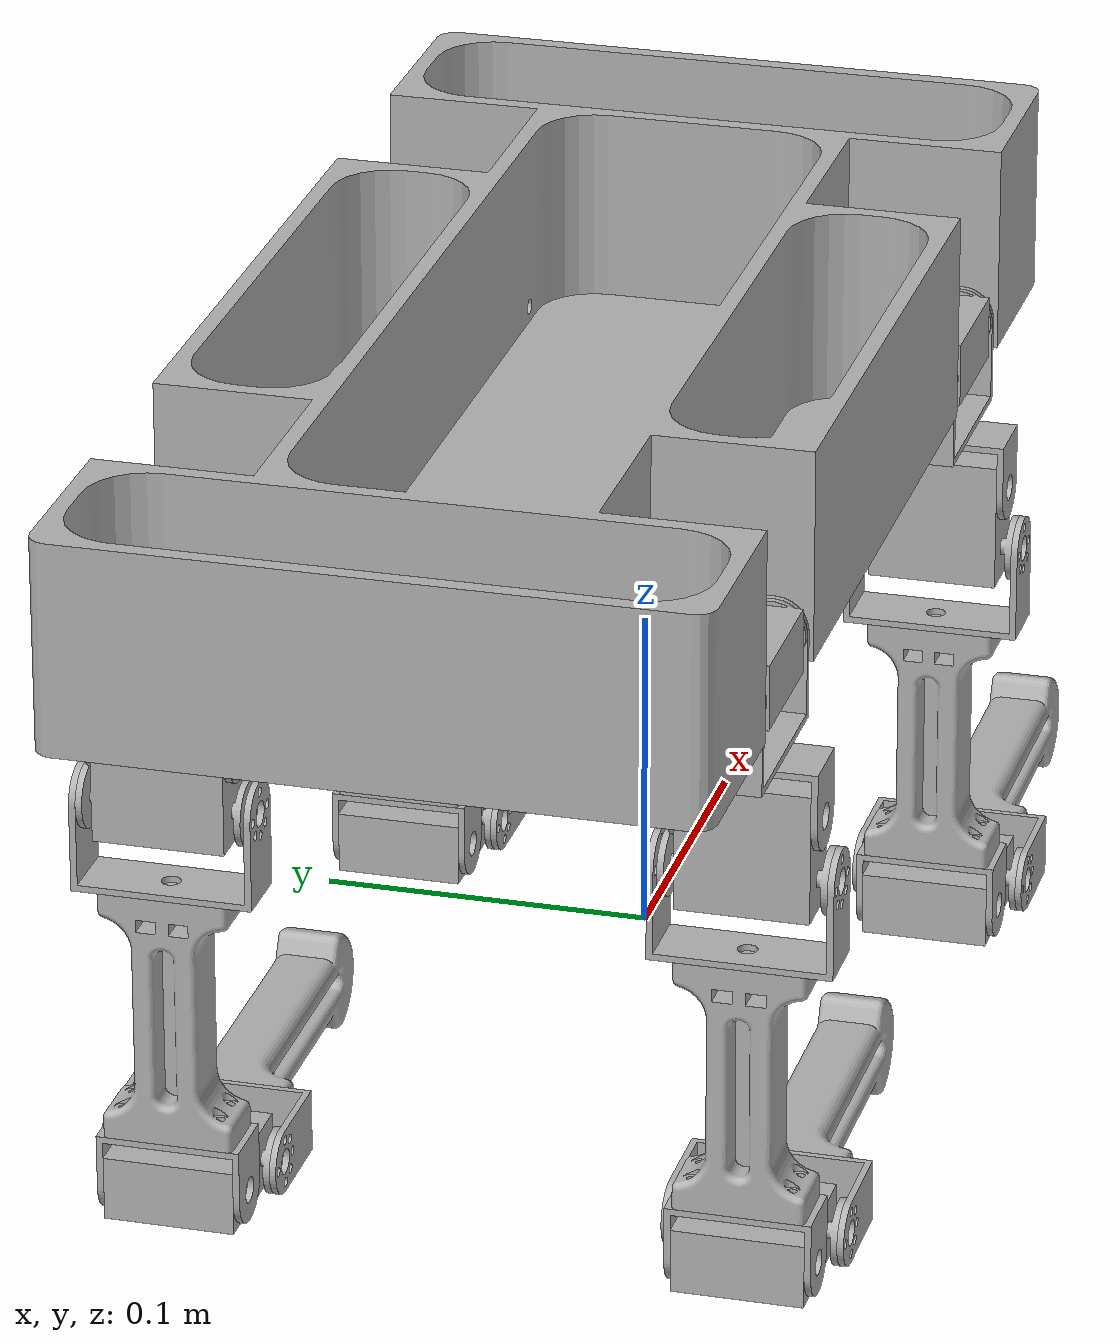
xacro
<?xml version="1.0" ?>
<robot name="bot_urdf_hii" xmlns:xacro="http://www.ros.org/wiki/xacro">

<xacro:include filename="$(find jack_pack)/urdf/materials.xacro" />
<xacro:include filename="$(find jack_pack)/urdf/bot_urdf_hii.trans" />
<xacro:include filename="$(find bot_urdf_hii_description)/urdf/bot_urdf_hii.gazebo" />
<xacro:include filename="$(find jack_pack)/urdf/ros2_control.xacro" />
<link name="base_link">
  <inertial>
    <origin xyz="-7.829829556326353e-11 0.024365666684909387 0.1598790754817299" rpy="0 0 0"/>
    <mass value="1.1433732359085518"/>
    <inertia ixx="0.005235" iyy="0.020337" izz="0.024577" ixy="-0.0" iyz="-0.0" ixz="-0.0"/>
  </inertial>
  <visual>
    <origin xyz="0 0 0" rpy="0 0 0"/>
    <geometry>
      <mesh filename="file://$(find bot_urdf_hii_description)/meshes/base_link.stl" scale="0.001 0.001 0.001"/>
    </geometry>
    <material name="silver"/>
  </visual>
  <collision>
    <origin xyz="0 0 0" rpy="0 0 0"/>
    <geometry>
      <mesh filename="file://$(find bot_urdf_hii_description)/meshes/base_link.stl" scale="0.001 0.001 0.001"/>
    </geometry>
  </collision>
</link>

<link name="servo_small_clip_v1__6__1">
  <inertial>
    <origin xyz="2.7945336743273597e-07 0.006816401170189237 3.333151153139813e-07" rpy="0 0 0"/>
    <mass value="0.009145592822398149"/>
    <inertia ixx="1e-06" iyy="3e-06" izz="3e-06" ixy="0.0" iyz="-0.0" ixz="0.0"/>
  </inertial>
  <visual>
    <origin xyz="-0.121498 -0.074366 -0.145634" rpy="0 0 0"/>
    <geometry>
      <mesh filename="file://$(find bot_urdf_hii_description)/meshes/servo_small_clip_v1__6__1.stl" scale="0.001 0.001 0.001"/>
    </geometry>
    <material name="silver"/>
  </visual>
  <collision>
    <origin xyz="-0.121498 -0.074366 -0.145634" rpy="0 0 0"/>
    <geometry>
      <mesh filename="file://$(find bot_urdf_hii_description)/meshes/servo_small_clip_v1__6__1.stl" scale="0.001 0.001 0.001"/>
    </geometry>
  </collision>
</link>

<link name="servo_small_clip_v1__5__1">
  <inertial>
    <origin xyz="2.7945336743273597e-07 -0.00681706780037027 3.3331511534173686e-07" rpy="0 0 0"/>
    <mass value="0.009145592822398149"/>
    <inertia ixx="1e-06" iyy="3e-06" izz="3e-06" ixy="-0.0" iyz="0.0" ixz="0.0"/>
  </inertial>
  <visual>
    <origin xyz="-0.121498 0.025634 -0.145634" rpy="0 0 0"/>
    <geometry>
      <mesh filename="file://$(find bot_urdf_hii_description)/meshes/servo_small_clip_v1__5__1.stl" scale="0.001 0.001 0.001"/>
    </geometry>
    <material name="silver"/>
  </visual>
  <collision>
    <origin xyz="-0.121498 0.025634 -0.145634" rpy="0 0 0"/>
    <geometry>
      <mesh filename="file://$(find bot_urdf_hii_description)/meshes/servo_small_clip_v1__5__1.stl" scale="0.001 0.001 0.001"/>
    </geometry>
  </collision>
</link>

<link name="servo_small_clip_v1__7__1">
  <inertial>
    <origin xyz="0.0 0.006816401170189237 3.333151153139813e-07" rpy="0 0 0"/>
    <mass value="0.009145592822398149"/>
    <inertia ixx="1e-06" iyy="3e-06" izz="3e-06" ixy="0.0" iyz="-0.0" ixz="0.0"/>
  </inertial>
  <visual>
    <origin xyz="0.1215 -0.074366 -0.145634" rpy="0 0 0"/>
    <geometry>
      <mesh filename="file://$(find bot_urdf_hii_description)/meshes/servo_small_clip_v1__7__1.stl" scale="0.001 0.001 0.001"/>
    </geometry>
    <material name="silver"/>
  </visual>
  <collision>
    <origin xyz="0.1215 -0.074366 -0.145634" rpy="0 0 0"/>
    <geometry>
      <mesh filename="file://$(find bot_urdf_hii_description)/meshes/servo_small_clip_v1__7__1.stl" scale="0.001 0.001 0.001"/>
    </geometry>
  </collision>
</link>

<link name="servo_small_clip_v1__4__1">
  <inertial>
    <origin xyz="-4.163336342344337e-17 -0.006817067800370249 3.333151155360259e-07" rpy="0 0 0"/>
    <mass value="0.009145592822398149"/>
    <inertia ixx="1e-06" iyy="3e-06" izz="3e-06" ixy="0.0" iyz="0.0" ixz="0.0"/>
  </inertial>
  <visual>
    <origin xyz="0.1215 0.025634 -0.145634" rpy="0 0 0"/>
    <geometry>
      <mesh filename="file://$(find bot_urdf_hii_description)/meshes/servo_small_clip_v1__4__1.stl" scale="0.001 0.001 0.001"/>
    </geometry>
    <material name="silver"/>
  </visual>
  <collision>
    <origin xyz="0.1215 0.025634 -0.145634" rpy="0 0 0"/>
    <geometry>
      <mesh filename="file://$(find bot_urdf_hii_description)/meshes/servo_small_clip_v1__4__1.stl" scale="0.001 0.001 0.001"/>
    </geometry>
  </collision>
</link>

<link name="Servo_RDS3115_v1__5__1">
  <inertial>
    <origin xyz="0.019999999999999907 -0.011079623170873722 3.333150907225413e-07" rpy="0 0 0"/>
    <mass value="0.050997583494915726"/>
    <inertia ixx="9e-06" iyy="1e-05" izz="1.5e-05" ixy="-0.0" iyz="-0.0" ixz="0.0"/>
  </inertial>
  <visual>
    <origin xyz="0.1415 0.042634 -0.145634" rpy="0 0 0"/>
    <geometry>
      <mesh filename="file://$(find bot_urdf_hii_description)/meshes/Servo_RDS3115_v1__5__1.stl" scale="0.001 0.001 0.001"/>
    </geometry>
    <material name="silver"/>
  </visual>
  <collision>
    <origin xyz="0.1415 0.042634 -0.145634" rpy="0 0 0"/>
    <geometry>
      <mesh filename="file://$(find bot_urdf_hii_description)/meshes/Servo_RDS3115_v1__5__1.stl" scale="0.001 0.001 0.001"/>
    </geometry>
  </collision>
</link>

<link name="Servo_RDS3115_v1__4__1">
  <inertial>
    <origin xyz="-0.01999972054663264 -0.011079623170873895 3.3331509052825226e-07" rpy="0 0 0"/>
    <mass value="0.050997583494915726"/>
    <inertia ixx="9e-06" iyy="1e-05" izz="1.5e-05" ixy="-0.0" iyz="-0.0" ixz="-0.0"/>
  </inertial>
  <visual>
    <origin xyz="-0.141498 0.042634 -0.145634" rpy="0 0 0"/>
    <geometry>
      <mesh filename="file://$(find bot_urdf_hii_description)/meshes/Servo_RDS3115_v1__4__1.stl" scale="0.001 0.001 0.001"/>
    </geometry>
    <material name="silver"/>
  </visual>
  <collision>
    <origin xyz="-0.141498 0.042634 -0.145634" rpy="0 0 0"/>
    <geometry>
      <mesh filename="file://$(find bot_urdf_hii_description)/meshes/Servo_RDS3115_v1__4__1.stl" scale="0.001 0.001 0.001"/>
    </geometry>
  </collision>
</link>

<link name="Servo_RDS3115_v1__3__1">
  <inertial>
    <origin xyz="0.020000000000000018 0.011078956540692839 3.333150904727411e-07" rpy="0 0 0"/>
    <mass value="0.050997583494915726"/>
    <inertia ixx="9e-06" iyy="1e-05" izz="1.5e-05" ixy="0.0" iyz="-0.0" ixz="0.0"/>
  </inertial>
  <visual>
    <origin xyz="0.1415 -0.091366 -0.145634" rpy="0 0 0"/>
    <geometry>
      <mesh filename="file://$(find bot_urdf_hii_description)/meshes/Servo_RDS3115_v1__3__1.stl" scale="0.001 0.001 0.001"/>
    </geometry>
    <material name="silver"/>
  </visual>
  <collision>
    <origin xyz="0.1415 -0.091366 -0.145634" rpy="0 0 0"/>
    <geometry>
      <mesh filename="file://$(find bot_urdf_hii_description)/meshes/Servo_RDS3115_v1__3__1.stl" scale="0.001 0.001 0.001"/>
    </geometry>
  </collision>
</link>

<link name="Servo_RDS3115_v1__2__1">
  <inertial>
    <origin xyz="-0.01999972054663257 0.011078956540692839 3.333150904727411e-07" rpy="0 0 0"/>
    <mass value="0.050997583494915726"/>
    <inertia ixx="9e-06" iyy="1e-05" izz="1.5e-05" ixy="0.0" iyz="0.0" ixz="0.0"/>
  </inertial>
  <visual>
    <origin xyz="-0.141498 -0.091366 -0.145634" rpy="0 0 0"/>
    <geometry>
      <mesh filename="file://$(find bot_urdf_hii_description)/meshes/Servo_RDS3115_v1__2__1.stl" scale="0.001 0.001 0.001"/>
    </geometry>
    <material name="silver"/>
  </visual>
  <collision>
    <origin xyz="-0.141498 -0.091366 -0.145634" rpy="0 0 0"/>
    <geometry>
      <mesh filename="file://$(find bot_urdf_hii_description)/meshes/Servo_RDS3115_v1__2__1.stl" scale="0.001 0.001 0.001"/>
    </geometry>
  </collision>
</link>

<link name="servo_big_clip_v1__4__1">
  <inertial>
    <origin xyz="-0.0254997205466327 -5.123391884492845e-07 -0.01767339316689384" rpy="0 0 0"/>
    <mass value="0.011882867210540276"/>
    <inertia ixx="2e-06" iyy="7e-06" izz="6e-06" ixy="0.0" iyz="0.0" ixz="0.0"/>
  </inertial>
  <visual>
    <origin xyz="-0.146498 -0.111366 -0.145634" rpy="0 0 0"/>
    <geometry>
      <mesh filename="file://$(find bot_urdf_hii_description)/meshes/servo_big_clip_v1__4__1.stl" scale="0.001 0.001 0.001"/>
    </geometry>
    <material name="silver"/>
  </visual>
  <collision>
    <origin xyz="-0.146498 -0.111366 -0.145634" rpy="0 0 0"/>
    <geometry>
      <mesh filename="file://$(find bot_urdf_hii_description)/meshes/servo_big_clip_v1__4__1.stl" scale="0.001 0.001 0.001"/>
    </geometry>
  </collision>
</link>

<link name="servo_big_clip_v1__6__1">
  <inertial>
    <origin xyz="-0.025499999999999967 -5.123391891292961e-07 -0.017673393166893897" rpy="0 0 0"/>
    <mass value="0.011882867210540276"/>
    <inertia ixx="2e-06" iyy="7e-06" izz="6e-06" ixy="-0.0" iyz="0.0" ixz="-0.0"/>
  </inertial>
  <visual>
    <origin xyz="0.0965 -0.111366 -0.145634" rpy="0 0 0"/>
    <geometry>
      <mesh filename="file://$(find bot_urdf_hii_description)/meshes/servo_big_clip_v1__6__1.stl" scale="0.001 0.001 0.001"/>
    </geometry>
    <material name="silver"/>
  </visual>
  <collision>
    <origin xyz="0.0965 -0.111366 -0.145634" rpy="0 0 0"/>
    <geometry>
      <mesh filename="file://$(find bot_urdf_hii_description)/meshes/servo_big_clip_v1__6__1.stl" scale="0.001 0.001 0.001"/>
    </geometry>
  </collision>
</link>

<link name="servo_big_clip_v1__5__1">
  <inertial>
    <origin xyz="-0.025499720546632673 -5.12339188282751e-07 -0.01767339316689384" rpy="0 0 0"/>
    <mass value="0.011882867210540276"/>
    <inertia ixx="2e-06" iyy="7e-06" izz="6e-06" ixy="-0.0" iyz="0.0" ixz="0.0"/>
  </inertial>
  <visual>
    <origin xyz="-0.146498 0.062634 -0.145634" rpy="0 0 0"/>
    <geometry>
      <mesh filename="file://$(find bot_urdf_hii_description)/meshes/servo_big_clip_v1__5__1.stl" scale="0.001 0.001 0.001"/>
    </geometry>
    <material name="silver"/>
  </visual>
  <collision>
    <origin xyz="-0.146498 0.062634 -0.145634" rpy="0 0 0"/>
    <geometry>
      <mesh filename="file://$(find bot_urdf_hii_description)/meshes/servo_big_clip_v1__5__1.stl" scale="0.001 0.001 0.001"/>
    </geometry>
  </collision>
</link>

<link name="servo_big_clip_v1__3__1">
  <inertial>
    <origin xyz="-0.025500000000000134 -5.123391881023398e-07 -0.017673393166893592" rpy="0 0 0"/>
    <mass value="0.011882867210540276"/>
    <inertia ixx="2e-06" iyy="7e-06" izz="6e-06" ixy="-0.0" iyz="0.0" ixz="0.0"/>
  </inertial>
  <visual>
    <origin xyz="0.0965 0.062634 -0.145634" rpy="0 0 0"/>
    <geometry>
      <mesh filename="file://$(find bot_urdf_hii_description)/meshes/servo_big_clip_v1__3__1.stl" scale="0.001 0.001 0.001"/>
    </geometry>
    <material name="silver"/>
  </visual>
  <collision>
    <origin xyz="0.0965 0.062634 -0.145634" rpy="0 0 0"/>
    <geometry>
      <mesh filename="file://$(find bot_urdf_hii_description)/meshes/servo_big_clip_v1__3__1.stl" scale="0.001 0.001 0.001"/>
    </geometry>
  </collision>
</link>

<link name="servo_small_clip_v1__2__1">
  <inertial>
    <origin xyz="2.794533920935649e-07 -3.333150906809079e-07 -0.006816401170189279" rpy="0 0 0"/>
    <mass value="0.009145592822398149"/>
    <inertia ixx="3e-06" iyy="1e-06" izz="3e-06" ixy="0.0" iyz="0.0" ixz="0.0"/>
  </inertial>
  <visual>
    <origin xyz="-0.120998 -0.111366 -0.118634" rpy="0 0 0"/>
    <geometry>
      <mesh filename="file://$(find bot_urdf_hii_description)/meshes/servo_small_clip_v1__2__1.stl" scale="0.001 0.001 0.001"/>
    </geometry>
    <material name="silver"/>
  </visual>
  <collision>
    <origin xyz="-0.120998 -0.111366 -0.118634" rpy="0 0 0"/>
    <geometry>
      <mesh filename="file://$(find bot_urdf_hii_description)/meshes/servo_small_clip_v1__2__1.stl" scale="0.001 0.001 0.001"/>
    </geometry>
  </collision>
</link>

<link name="servo_small_clip_v1__1__1">
  <inertial>
    <origin xyz="2.4868995751603507e-14 -3.3331509130540837e-07 -0.006816401170189362" rpy="0 0 0"/>
    <mass value="0.009145592822398149"/>
    <inertia ixx="3e-06" iyy="1e-06" izz="3e-06" ixy="0.0" iyz="0.0" ixz="0.0"/>
  </inertial>
  <visual>
    <origin xyz="0.122 -0.111366 -0.118634" rpy="0 0 0"/>
    <geometry>
      <mesh filename="file://$(find bot_urdf_hii_description)/meshes/servo_small_clip_v1__1__1.stl" scale="0.001 0.001 0.001"/>
    </geometry>
    <material name="silver"/>
  </visual>
  <collision>
    <origin xyz="0.122 -0.111366 -0.118634" rpy="0 0 0"/>
    <geometry>
      <mesh filename="file://$(find bot_urdf_hii_description)/meshes/servo_small_clip_v1__1__1.stl" scale="0.001 0.001 0.001"/>
    </geometry>
  </collision>
</link>

<link name="servo_small_clip_v1_1">
  <inertial>
    <origin xyz="2.4702462297909733e-14 -3.333150902784521e-07 -0.006816401170189043" rpy="0 0 0"/>
    <mass value="0.009145592822398149"/>
    <inertia ixx="3e-06" iyy="1e-06" izz="3e-06" ixy="0.0" iyz="0.0" ixz="0.0"/>
  </inertial>
  <visual>
    <origin xyz="0.122 0.062634 -0.118634" rpy="0 0 0"/>
    <geometry>
      <mesh filename="file://$(find bot_urdf_hii_description)/meshes/servo_small_clip_v1_1.stl" scale="0.001 0.001 0.001"/>
    </geometry>
    <material name="silver"/>
  </visual>
  <collision>
    <origin xyz="0.122 0.062634 -0.118634" rpy="0 0 0"/>
    <geometry>
      <mesh filename="file://$(find bot_urdf_hii_description)/meshes/servo_small_clip_v1_1.stl" scale="0.001 0.001 0.001"/>
    </geometry>
  </collision>
</link>

<link name="servo_small_clip_v1__3__1">
  <inertial>
    <origin xyz="2.794533921074427e-07 -3.3331509052825226e-07 -0.006816401170189307" rpy="0 0 0"/>
    <mass value="0.009145592822398149"/>
    <inertia ixx="3e-06" iyy="1e-06" izz="3e-06" ixy="0.0" iyz="0.0" ixz="0.0"/>
  </inertial>
  <visual>
    <origin xyz="-0.120998 0.062634 -0.118634" rpy="0 0 0"/>
    <geometry>
      <mesh filename="file://$(find bot_urdf_hii_description)/meshes/servo_small_clip_v1__3__1.stl" scale="0.001 0.001 0.001"/>
    </geometry>
    <material name="silver"/>
  </visual>
  <collision>
    <origin xyz="-0.120998 0.062634 -0.118634" rpy="0 0 0"/>
    <geometry>
      <mesh filename="file://$(find bot_urdf_hii_description)/meshes/servo_small_clip_v1__3__1.stl" scale="0.001 0.001 0.001"/>
    </geometry>
  </collision>
</link>

<link name="Servo_RDS3115_v1__1__1">
  <inertial>
    <origin xyz="2.794533657118903e-07 -0.020000333315090657 -0.011078956540692853" rpy="0 0 0"/>
    <mass value="0.050997583494915726"/>
    <inertia ixx="1.5e-05" iyy="9e-06" izz="1e-05" ixy="-0.0" iyz="0.0" ixz="0.0"/>
  </inertial>
  <visual>
    <origin xyz="-0.120998 -0.131366 -0.101634" rpy="0 0 0"/>
    <geometry>
      <mesh filename="file://$(find bot_urdf_hii_description)/meshes/Servo_RDS3115_v1__1__1.stl" scale="0.001 0.001 0.001"/>
    </geometry>
    <material name="silver"/>
  </visual>
  <collision>
    <origin xyz="-0.120998 -0.131366 -0.101634" rpy="0 0 0"/>
    <geometry>
      <mesh filename="file://$(find bot_urdf_hii_description)/meshes/Servo_RDS3115_v1__1__1.stl" scale="0.001 0.001 0.001"/>
    </geometry>
  </collision>
</link>

<link name="Servo_RDS3115_v1__6__1">
  <inertial>
    <origin xyz="-7.632783294297951e-16 -0.020000333315091365 -0.011078956540693033" rpy="0 0 0"/>
    <mass value="0.050997583494915726"/>
    <inertia ixx="1.5e-05" iyy="9e-06" izz="1e-05" ixy="-0.0" iyz="0.0" ixz="0.0"/>
  </inertial>
  <visual>
    <origin xyz="0.122 -0.131366 -0.101634" rpy="0 0 0"/>
    <geometry>
      <mesh filename="file://$(find bot_urdf_hii_description)/meshes/Servo_RDS3115_v1__6__1.stl" scale="0.001 0.001 0.001"/>
    </geometry>
    <material name="silver"/>
  </visual>
  <collision>
    <origin xyz="0.122 -0.131366 -0.101634" rpy="0 0 0"/>
    <geometry>
      <mesh filename="file://$(find bot_urdf_hii_description)/meshes/Servo_RDS3115_v1__6__1.stl" scale="0.001 0.001 0.001"/>
    </geometry>
  </collision>
</link>

<link name="Servo_RDS3115_v1__7__1">
  <inertial>
    <origin xyz="-1.6653345369377348e-16 -0.02000033331509033 -0.0110789565406927" rpy="0 0 0"/>
    <mass value="0.050997583494915726"/>
    <inertia ixx="1.5e-05" iyy="9e-06" izz="1e-05" ixy="0.0" iyz="0.0" ixz="0.0"/>
  </inertial>
  <visual>
    <origin xyz="0.122 0.042634 -0.101634" rpy="0 0 0"/>
    <geometry>
      <mesh filename="file://$(find bot_urdf_hii_description)/meshes/Servo_RDS3115_v1__7__1.stl" scale="0.001 0.001 0.001"/>
    </geometry>
    <material name="silver"/>
  </visual>
  <collision>
    <origin xyz="0.122 0.042634 -0.101634" rpy="0 0 0"/>
    <geometry>
      <mesh filename="file://$(find bot_urdf_hii_description)/meshes/Servo_RDS3115_v1__7__1.stl" scale="0.001 0.001 0.001"/>
    </geometry>
  </collision>
</link>

<link name="Servo_RDS3115_v1_1">
  <inertial>
    <origin xyz="2.794533678490696e-07 0.019999666684909517 -0.011078956540692977" rpy="0 0 0"/>
    <mass value="0.050997583494915726"/>
    <inertia ixx="1.5e-05" iyy="9e-06" izz="1e-05" ixy="-0.0" iyz="0.0" ixz="0.0"/>
  </inertial>
  <visual>
    <origin xyz="-0.120998 0.082634 -0.101634" rpy="0 0 0"/>
    <geometry>
      <mesh filename="file://$(find bot_urdf_hii_description)/meshes/Servo_RDS3115_v1_1.stl" scale="0.001 0.001 0.001"/>
    </geometry>
    <material name="silver"/>
  </visual>
  <collision>
    <origin xyz="-0.120998 0.082634 -0.101634" rpy="0 0 0"/>
    <geometry>
      <mesh filename="file://$(find bot_urdf_hii_description)/meshes/Servo_RDS3115_v1_1.stl" scale="0.001 0.001 0.001"/>
    </geometry>
  </collision>
</link>

<link name="servo_big_clip_v1__7__1">
  <inertial>
    <origin xyz="1.0042926952558151e-07 -0.02550033331509069 -0.017673393166893855" rpy="0 0 0"/>
    <mass value="0.011882867210540276"/>
    <inertia ixx="7e-06" iyy="2e-06" izz="6e-06" ixy="0.0" iyz="-0.0" ixz="0.0"/>
  </inertial>
  <visual>
    <origin xyz="-0.120998 -0.136366 -0.081634" rpy="0 0 0"/>
    <geometry>
      <mesh filename="file://$(find bot_urdf_hii_description)/meshes/servo_big_clip_v1__7__1.stl" scale="0.001 0.001 0.001"/>
    </geometry>
    <material name="silver"/>
  </visual>
  <collision>
    <origin xyz="-0.120998 -0.136366 -0.081634" rpy="0 0 0"/>
    <geometry>
      <mesh filename="file://$(find bot_urdf_hii_description)/meshes/servo_big_clip_v1__7__1.stl" scale="0.001 0.001 0.001"/>
    </geometry>
  </collision>
</link>

<link name="servo_big_clip_v1_1">
  <inertial>
    <origin xyz="-1.790240984345104e-07 -0.02550033331509137 -0.017673393166893966" rpy="0 0 0"/>
    <mass value="0.011882867210540276"/>
    <inertia ixx="7e-06" iyy="2e-06" izz="6e-06" ixy="0.0" iyz="-0.0" ixz="0.0"/>
  </inertial>
  <visual>
    <origin xyz="0.122 -0.136366 -0.081634" rpy="0 0 0"/>
    <geometry>
      <mesh filename="file://$(find bot_urdf_hii_description)/meshes/servo_big_clip_v1_1.stl" scale="0.001 0.001 0.001"/>
    </geometry>
    <material name="silver"/>
  </visual>
  <collision>
    <origin xyz="0.122 -0.136366 -0.081634" rpy="0 0 0"/>
    <geometry>
      <mesh filename="file://$(find bot_urdf_hii_description)/meshes/servo_big_clip_v1_1.stl" scale="0.001 0.001 0.001"/>
    </geometry>
  </collision>
</link>

<link name="servo_big_clip_v1__2__1">
  <inertial>
    <origin xyz="-1.790240979626656e-07 0.025499666684909744 -0.017673393166893592" rpy="0 0 0"/>
    <mass value="0.011882867210540276"/>
    <inertia ixx="7e-06" iyy="2e-06" izz="6e-06" ixy="0.0" iyz="-0.0" ixz="0.0"/>
  </inertial>
  <visual>
    <origin xyz="0.122 0.087634 -0.081634" rpy="0 0 0"/>
    <geometry>
      <mesh filename="file://$(find bot_urdf_hii_description)/meshes/servo_big_clip_v1__2__1.stl" scale="0.001 0.001 0.001"/>
    </geometry>
    <material name="silver"/>
  </visual>
  <collision>
    <origin xyz="0.122 0.087634 -0.081634" rpy="0 0 0"/>
    <geometry>
      <mesh filename="file://$(find bot_urdf_hii_description)/meshes/servo_big_clip_v1__2__1.stl" scale="0.001 0.001 0.001"/>
    </geometry>
  </collision>
</link>

<link name="servo_big_clip_v1__1__1">
  <inertial>
    <origin xyz="1.0042926944231478e-07 0.025499666684909578 -0.017673393166893883" rpy="0 0 0"/>
    <mass value="0.011882867210540276"/>
    <inertia ixx="7e-06" iyy="2e-06" izz="6e-06" ixy="0.0" iyz="-0.0" ixz="0.0"/>
  </inertial>
  <visual>
    <origin xyz="-0.120998 0.087634 -0.081634" rpy="0 0 0"/>
    <geometry>
      <mesh filename="file://$(find bot_urdf_hii_description)/meshes/servo_big_clip_v1__1__1.stl" scale="0.001 0.001 0.001"/>
    </geometry>
    <material name="silver"/>
  </visual>
  <collision>
    <origin xyz="-0.120998 0.087634 -0.081634" rpy="0 0 0"/>
    <geometry>
      <mesh filename="file://$(find bot_urdf_hii_description)/meshes/servo_big_clip_v1__1__1.stl" scale="0.001 0.001 0.001"/>
    </geometry>
  </collision>
</link>

<link name="lag1_v9_1">
  <inertial>
    <origin xyz="2.487264359474217e-07 -7.55048806869163e-06 -0.04072502883613513" rpy="0 0 0"/>
    <mass value="0.03430898989942815"/>
    <inertia ixx="2.8e-05" iyy="2.6e-05" izz="4e-06" ixy="0.0" iyz="-0.0" ixz="0.0"/>
  </inertial>
  <visual>
    <origin xyz="-0.120998 -0.110866 -0.054634" rpy="0 0 0"/>
    <geometry>
      <mesh filename="file://$(find bot_urdf_hii_description)/meshes/lag1_v9_1.stl" scale="0.001 0.001 0.001"/>
    </geometry>
    <material name="silver"/>
  </visual>
  <collision>
    <origin xyz="-0.120998 -0.110866 -0.054634" rpy="0 0 0"/>
    <geometry>
      <mesh filename="file://$(find bot_urdf_hii_description)/meshes/lag1_v9_1.stl" scale="0.001 0.001 0.001"/>
    </geometry>
  </collision>
</link>

<link name="lag1_v9__1__1">
  <inertial>
    <origin xyz="-3.072693134653637e-08 -7.55048806944103e-06 -0.0407250288361353" rpy="0 0 0"/>
    <mass value="0.03430898989942815"/>
    <inertia ixx="2.8e-05" iyy="2.6e-05" izz="4e-06" ixy="0.0" iyz="-0.0" ixz="0.0"/>
  </inertial>
  <visual>
    <origin xyz="0.122 -0.110866 -0.054634" rpy="0 0 0"/>
    <geometry>
      <mesh filename="file://$(find bot_urdf_hii_description)/meshes/lag1_v9__1__1.stl" scale="0.001 0.001 0.001"/>
    </geometry>
    <material name="silver"/>
  </visual>
  <collision>
    <origin xyz="0.122 -0.110866 -0.054634" rpy="0 0 0"/>
    <geometry>
      <mesh filename="file://$(find bot_urdf_hii_description)/meshes/lag1_v9__1__1.stl" scale="0.001 0.001 0.001"/>
    </geometry>
  </collision>
</link>

<link name="lag1_v9__3__1">
  <inertial>
    <origin xyz="-3.072693151306982e-08 -7.550488068303052e-06 -0.04072502883613494" rpy="0 0 0"/>
    <mass value="0.03430898989942815"/>
    <inertia ixx="2.8e-05" iyy="2.6e-05" izz="4e-06" ixy="0.0" iyz="-0.0" ixz="0.0"/>
  </inertial>
  <visual>
    <origin xyz="0.122 0.062134 -0.054634" rpy="0 0 0"/>
    <geometry>
      <mesh filename="file://$(find bot_urdf_hii_description)/meshes/lag1_v9__3__1.stl" scale="0.001 0.001 0.001"/>
    </geometry>
    <material name="silver"/>
  </visual>
  <collision>
    <origin xyz="0.122 0.062134 -0.054634" rpy="0 0 0"/>
    <geometry>
      <mesh filename="file://$(find bot_urdf_hii_description)/meshes/lag1_v9__3__1.stl" scale="0.001 0.001 0.001"/>
    </geometry>
  </collision>
</link>

<link name="lag1_v9__2__1">
  <inertial>
    <origin xyz="2.48726435864155e-07 -7.550488068337746e-06 -0.04072502883613521" rpy="0 0 0"/>
    <mass value="0.03430898989942815"/>
    <inertia ixx="2.8e-05" iyy="2.6e-05" izz="4e-06" ixy="0.0" iyz="-0.0" ixz="0.0"/>
  </inertial>
  <visual>
    <origin xyz="-0.120998 0.062134 -0.054634" rpy="0 0 0"/>
    <geometry>
      <mesh filename="file://$(find bot_urdf_hii_description)/meshes/lag1_v9__2__1.stl" scale="0.001 0.001 0.001"/>
    </geometry>
    <material name="silver"/>
  </visual>
  <collision>
    <origin xyz="-0.120998 0.062134 -0.054634" rpy="0 0 0"/>
    <geometry>
      <mesh filename="file://$(find bot_urdf_hii_description)/meshes/lag1_v9__2__1.stl" scale="0.001 0.001 0.001"/>
    </geometry>
  </collision>
</link>

<link name="servo_small_clip_v1__9__1">
  <inertial>
    <origin xyz="2.4702462297909733e-14 -3.3331509028539097e-07 -0.006816401170189071" rpy="0 0 0"/>
    <mass value="0.009145592822398149"/>
    <inertia ixx="3e-06" iyy="1e-06" izz="3e-06" ixy="0.0" iyz="0.0" ixz="0.0"/>
  </inertial>
  <visual>
    <origin xyz="0.122 0.062134 0.025366" rpy="0 0 0"/>
    <geometry>
      <mesh filename="file://$(find bot_urdf_hii_description)/meshes/servo_small_clip_v1__9__1.stl" scale="0.001 0.001 0.001"/>
    </geometry>
    <material name="silver"/>
  </visual>
  <collision>
    <origin xyz="0.122 0.062134 0.025366" rpy="0 0 0"/>
    <geometry>
      <mesh filename="file://$(find bot_urdf_hii_description)/meshes/servo_small_clip_v1__9__1.stl" scale="0.001 0.001 0.001"/>
    </geometry>
  </collision>
</link>

<link name="servo_small_clip_v1__10__1">
  <inertial>
    <origin xyz="2.4896751327219135e-14 -3.3331509134704174e-07 -0.006816401170189404" rpy="0 0 0"/>
    <mass value="0.009145592822398149"/>
    <inertia ixx="3e-06" iyy="1e-06" izz="3e-06" ixy="0.0" iyz="0.0" ixz="0.0"/>
  </inertial>
  <visual>
    <origin xyz="0.122 -0.110866 0.025366" rpy="0 0 0"/>
    <geometry>
      <mesh filename="file://$(find bot_urdf_hii_description)/meshes/servo_small_clip_v1__10__1.stl" scale="0.001 0.001 0.001"/>
    </geometry>
    <material name="silver"/>
  </visual>
  <collision>
    <origin xyz="0.122 -0.110866 0.025366" rpy="0 0 0"/>
    <geometry>
      <mesh filename="file://$(find bot_urdf_hii_description)/meshes/servo_small_clip_v1__10__1.stl" scale="0.001 0.001 0.001"/>
    </geometry>
  </collision>
</link>

<link name="servo_small_clip_v1__11__1">
  <inertial>
    <origin xyz="2.794533921074427e-07 -3.333150904866189e-07 -0.006816401170189362" rpy="0 0 0"/>
    <mass value="0.009145592822398149"/>
    <inertia ixx="3e-06" iyy="1e-06" izz="3e-06" ixy="0.0" iyz="0.0" ixz="0.0"/>
  </inertial>
  <visual>
    <origin xyz="-0.120998 0.062134 0.025366" rpy="0 0 0"/>
    <geometry>
      <mesh filename="file://$(find bot_urdf_hii_description)/meshes/servo_small_clip_v1__11__1.stl" scale="0.001 0.001 0.001"/>
    </geometry>
    <material name="silver"/>
  </visual>
  <collision>
    <origin xyz="-0.120998 0.062134 0.025366" rpy="0 0 0"/>
    <geometry>
      <mesh filename="file://$(find bot_urdf_hii_description)/meshes/servo_small_clip_v1__11__1.stl" scale="0.001 0.001 0.001"/>
    </geometry>
  </collision>
</link>

<link name="servo_small_clip_v1__8__1">
  <inertial>
    <origin xyz="2.794533921907094e-07 -3.333150906809079e-07 -0.006816401170189258" rpy="0 0 0"/>
    <mass value="0.009145592822398149"/>
    <inertia ixx="3e-06" iyy="1e-06" izz="3e-06" ixy="0.0" iyz="0.0" ixz="0.0"/>
  </inertial>
  <visual>
    <origin xyz="-0.120998 -0.110866 0.025366" rpy="0 0 0"/>
    <geometry>
      <mesh filename="file://$(find bot_urdf_hii_description)/meshes/servo_small_clip_v1__8__1.stl" scale="0.001 0.001 0.001"/>
    </geometry>
    <material name="silver"/>
  </visual>
  <collision>
    <origin xyz="-0.120998 -0.110866 0.025366" rpy="0 0 0"/>
    <geometry>
      <mesh filename="file://$(find bot_urdf_hii_description)/meshes/servo_small_clip_v1__8__1.stl" scale="0.001 0.001 0.001"/>
    </geometry>
  </collision>
</link>

<link name="Servo_RDS3115_v1__11__1">
  <inertial>
    <origin xyz="0.011079289855784075 0.019999666684908643 3.333150903617188e-07" rpy="0 0 0"/>
    <mass value="0.050997583494915726"/>
    <inertia ixx="1e-05" iyy="9e-06" izz="1.5e-05" ixy="0.0" iyz="0.0" ixz="0.0"/>
  </inertial>
  <visual>
    <origin xyz="0.122 -0.090866 0.042366" rpy="0 0 0"/>
    <geometry>
      <mesh filename="file://$(find bot_urdf_hii_description)/meshes/Servo_RDS3115_v1__11__1.stl" scale="0.001 0.001 0.001"/>
    </geometry>
    <material name="silver"/>
  </visual>
  <collision>
    <origin xyz="0.122 -0.090866 0.042366" rpy="0 0 0"/>
    <geometry>
      <mesh filename="file://$(find bot_urdf_hii_description)/meshes/Servo_RDS3115_v1__11__1.stl" scale="0.001 0.001 0.001"/>
    </geometry>
  </collision>
</link>

<link name="Servo_RDS3115_v1__10__1">
  <inertial>
    <origin xyz="0.011079289855782853 0.01999966668490974 3.333150906809079e-07" rpy="0 0 0"/>
    <mass value="0.050997583494915726"/>
    <inertia ixx="1e-05" iyy="9e-06" izz="1.5e-05" ixy="0.0" iyz="0.0" ixz="0.0"/>
  </inertial>
  <visual>
    <origin xyz="0.122 0.082134 0.042366" rpy="0 0 0"/>
    <geometry>
      <mesh filename="file://$(find bot_urdf_hii_description)/meshes/Servo_RDS3115_v1__10__1.stl" scale="0.001 0.001 0.001"/>
    </geometry>
    <material name="silver"/>
  </visual>
  <collision>
    <origin xyz="0.122 0.082134 0.042366" rpy="0 0 0"/>
    <geometry>
      <mesh filename="file://$(find bot_urdf_hii_description)/meshes/Servo_RDS3115_v1__10__1.stl" scale="0.001 0.001 0.001"/>
    </geometry>
  </collision>
</link>

<link name="Servo_RDS3115_v1__9__1">
  <inertial>
    <origin xyz="0.011079569309150689 0.019999666684909538 3.3331509041722995e-07" rpy="0 0 0"/>
    <mass value="0.050997583494915726"/>
    <inertia ixx="1e-05" iyy="9e-06" izz="1.5e-05" ixy="0.0" iyz="0.0" ixz="0.0"/>
  </inertial>
  <visual>
    <origin xyz="-0.120998 0.082134 0.042366" rpy="0 0 0"/>
    <geometry>
      <mesh filename="file://$(find bot_urdf_hii_description)/meshes/Servo_RDS3115_v1__9__1.stl" scale="0.001 0.001 0.001"/>
    </geometry>
    <material name="silver"/>
  </visual>
  <collision>
    <origin xyz="-0.120998 0.082134 0.042366" rpy="0 0 0"/>
    <geometry>
      <mesh filename="file://$(find bot_urdf_hii_description)/meshes/Servo_RDS3115_v1__9__1.stl" scale="0.001 0.001 0.001"/>
    </geometry>
  </collision>
</link>

<link name="Servo_RDS3115_v1__8__1">
  <inertial>
    <origin xyz="0.011079569309150689 0.019999666684909323 3.3331509051437447e-07" rpy="0 0 0"/>
    <mass value="0.050997583494915726"/>
    <inertia ixx="1e-05" iyy="9e-06" izz="1.5e-05" ixy="-0.0" iyz="0.0" ixz="0.0"/>
  </inertial>
  <visual>
    <origin xyz="-0.120998 -0.090866 0.042366" rpy="0 0 0"/>
    <geometry>
      <mesh filename="file://$(find bot_urdf_hii_description)/meshes/Servo_RDS3115_v1__8__1.stl" scale="0.001 0.001 0.001"/>
    </geometry>
    <material name="silver"/>
  </visual>
  <collision>
    <origin xyz="-0.120998 -0.090866 0.042366" rpy="0 0 0"/>
    <geometry>
      <mesh filename="file://$(find bot_urdf_hii_description)/meshes/Servo_RDS3115_v1__8__1.stl" scale="0.001 0.001 0.001"/>
    </geometry>
  </collision>
</link>

<link name="servo_big_clip_v1__11__1">
  <inertial>
    <origin xyz="0.017673726481985105 0.025499666684909147 5.123391881856065e-07" rpy="0 0 0"/>
    <mass value="0.011882867210540276"/>
    <inertia ixx="6e-06" iyy="2e-06" izz="7e-06" ixy="0.0" iyz="0.0" ixz="0.0"/>
  </inertial>
  <visual>
    <origin xyz="0.102 -0.085866 0.042366" rpy="0 0 0"/>
    <geometry>
      <mesh filename="file://$(find bot_urdf_hii_description)/meshes/servo_big_clip_v1__11__1.stl" scale="0.001 0.001 0.001"/>
    </geometry>
    <material name="silver"/>
  </visual>
  <collision>
    <origin xyz="0.102 -0.085866 0.042366" rpy="0 0 0"/>
    <geometry>
      <mesh filename="file://$(find bot_urdf_hii_description)/meshes/servo_big_clip_v1__11__1.stl" scale="0.001 0.001 0.001"/>
    </geometry>
  </collision>
</link>

<link name="servo_big_clip_v1__10__1">
  <inertial>
    <origin xyz="0.017673726481984092 0.02549966668490984 5.123391885117345e-07" rpy="0 0 0"/>
    <mass value="0.011882867210540276"/>
    <inertia ixx="6e-06" iyy="2e-06" izz="7e-06" ixy="0.0" iyz="0.0" ixz="0.0"/>
  </inertial>
  <visual>
    <origin xyz="0.102 0.087134 0.042366" rpy="0 0 0"/>
    <geometry>
      <mesh filename="file://$(find bot_urdf_hii_description)/meshes/servo_big_clip_v1__10__1.stl" scale="0.001 0.001 0.001"/>
    </geometry>
    <material name="silver"/>
  </visual>
  <collision>
    <origin xyz="0.102 0.087134 0.042366" rpy="0 0 0"/>
    <geometry>
      <mesh filename="file://$(find bot_urdf_hii_description)/meshes/servo_big_clip_v1__10__1.stl" scale="0.001 0.001 0.001"/>
    </geometry>
  </collision>
</link>

<link name="servo_big_clip_v1__9__1">
  <inertial>
    <origin xyz="0.01767400593535201 0.025499666684909397 5.123391882411177e-07" rpy="0 0 0"/>
    <mass value="0.011882867210540276"/>
    <inertia ixx="6e-06" iyy="2e-06" izz="7e-06" ixy="-0.0" iyz="0.0" ixz="0.0"/>
  </inertial>
  <visual>
    <origin xyz="-0.140998 0.087134 0.042366" rpy="0 0 0"/>
    <geometry>
      <mesh filename="file://$(find bot_urdf_hii_description)/meshes/servo_big_clip_v1__9__1.stl" scale="0.001 0.001 0.001"/>
    </geometry>
    <material name="silver"/>
  </visual>
  <collision>
    <origin xyz="-0.140998 0.087134 0.042366" rpy="0 0 0"/>
    <geometry>
      <mesh filename="file://$(find bot_urdf_hii_description)/meshes/servo_big_clip_v1__9__1.stl" scale="0.001 0.001 0.001"/>
    </geometry>
  </collision>
</link>

<link name="servo_big_clip_v1__8__1">
  <inertial>
    <origin xyz="0.01767400593535101 0.025499666684909703 5.123391883452011e-07" rpy="0 0 0"/>
    <mass value="0.011882867210540276"/>
    <inertia ixx="6e-06" iyy="2e-06" izz="7e-06" ixy="0.0" iyz="0.0" ixz="0.0"/>
  </inertial>
  <visual>
    <origin xyz="-0.140998 -0.085866 0.042366" rpy="0 0 0"/>
    <geometry>
      <mesh filename="file://$(find bot_urdf_hii_description)/meshes/servo_big_clip_v1__8__1.stl" scale="0.001 0.001 0.001"/>
    </geometry>
    <material name="silver"/>
  </visual>
  <collision>
    <origin xyz="-0.140998 -0.085866 0.042366" rpy="0 0 0"/>
    <geometry>
      <mesh filename="file://$(find bot_urdf_hii_description)/meshes/servo_big_clip_v1__8__1.stl" scale="0.001 0.001 0.001"/>
    </geometry>
  </collision>
</link>

<link name="lag_2_v7__1__1">
  <inertial>
    <origin xyz="0.04914040820366403 5.623370695803653e-06 6.446678870453137e-07" rpy="0 0 0"/>
    <mass value="0.039693577545623984"/>
    <inertia ixx="4e-06" iyy="4.8e-05" izz="4.8e-05" ixy="-0.0" iyz="-0.0" ixz="0.0"/>
  </inertial>
  <visual>
    <origin xyz="0.075 -0.111366 0.042366" rpy="0 0 0"/>
    <geometry>
      <mesh filename="file://$(find bot_urdf_hii_description)/meshes/lag_2_v7__1__1.stl" scale="0.001 0.001 0.001"/>
    </geometry>
    <material name="silver"/>
  </visual>
  <collision>
    <origin xyz="0.075 -0.111366 0.042366" rpy="0 0 0"/>
    <geometry>
      <mesh filename="file://$(find bot_urdf_hii_description)/meshes/lag_2_v7__1__1.stl" scale="0.001 0.001 0.001"/>
    </geometry>
  </collision>
</link>

<link name="lag_2_v7__3__1">
  <inertial>
    <origin xyz="0.04914040820366368 5.62337069576202e-06 6.446678873645029e-07" rpy="0 0 0"/>
    <mass value="0.039693577545623984"/>
    <inertia ixx="4e-06" iyy="4.8e-05" izz="4.8e-05" ixy="-0.0" iyz="-0.0" ixz="0.0"/>
  </inertial>
  <visual>
    <origin xyz="0.075 0.061634 0.042366" rpy="0 0 0"/>
    <geometry>
      <mesh filename="file://$(find bot_urdf_hii_description)/meshes/lag_2_v7__3__1.stl" scale="0.001 0.001 0.001"/>
    </geometry>
    <material name="silver"/>
  </visual>
  <collision>
    <origin xyz="0.075 0.061634 0.042366" rpy="0 0 0"/>
    <geometry>
      <mesh filename="file://$(find bot_urdf_hii_description)/meshes/lag_2_v7__3__1.stl" scale="0.001 0.001 0.001"/>
    </geometry>
  </collision>
</link>

<link name="lag_2_v7_1">
  <inertial>
    <origin xyz="0.04914068765703142 5.6233706953318086e-06 6.446678872049083e-07" rpy="0 0 0"/>
    <mass value="0.039693577545623984"/>
    <inertia ixx="4e-06" iyy="4.8e-05" izz="4.8e-05" ixy="-0.0" iyz="-0.0" ixz="0.0"/>
  </inertial>
  <visual>
    <origin xyz="-0.167998 -0.111366 0.042366" rpy="0 0 0"/>
    <geometry>
      <mesh filename="file://$(find bot_urdf_hii_description)/meshes/lag_2_v7_1.stl" scale="0.001 0.001 0.001"/>
    </geometry>
    <material name="silver"/>
  </visual>
  <collision>
    <origin xyz="-0.167998 -0.111366 0.042366" rpy="0 0 0"/>
    <geometry>
      <mesh filename="file://$(find bot_urdf_hii_description)/meshes/lag_2_v7_1.stl" scale="0.001 0.001 0.001"/>
    </geometry>
  </collision>
</link>

<link name="lag_2_v7__2__1">
  <inertial>
    <origin xyz="0.04914068765703136 5.6233706955954865e-06 6.446678870800082e-07" rpy="0 0 0"/>
    <mass value="0.039693577545623984"/>
    <inertia ixx="4e-06" iyy="4.8e-05" izz="4.8e-05" ixy="-0.0" iyz="-0.0" ixz="0.0"/>
  </inertial>
  <visual>
    <origin xyz="-0.167998 0.061634 0.042366" rpy="0 0 0"/>
    <geometry>
      <mesh filename="file://$(find bot_urdf_hii_description)/meshes/lag_2_v7__2__1.stl" scale="0.001 0.001 0.001"/>
    </geometry>
    <material name="silver"/>
  </visual>
  <collision>
    <origin xyz="-0.167998 0.061634 0.042366" rpy="0 0 0"/>
    <geometry>
      <mesh filename="file://$(find bot_urdf_hii_description)/meshes/lag_2_v7__2__1.stl" scale="0.001 0.001 0.001"/>
    </geometry>
  </collision>
</link>

<joint name="Rigid 1" type="fixed">
  <origin xyz="0.121498 0.074366 0.145634" rpy="0 0 0"/>
  <parent link="base_link"/>
  <child link="servo_small_clip_v1__6__1"/>
</joint>

<joint name="Rigid 2" type="fixed">
  <origin xyz="0.121498 -0.025634 0.145634" rpy="0 0 0"/>
  <parent link="base_link"/>
  <child link="servo_small_clip_v1__5__1"/>
</joint>

<joint name="Rigid 3" type="fixed">
  <origin xyz="-0.1215 0.074366 0.145634" rpy="0 0 0"/>
  <parent link="base_link"/>
  <child link="servo_small_clip_v1__7__1"/>
</joint>

<joint name="Rigid 4" type="fixed">
  <origin xyz="-0.1215 -0.025634 0.145634" rpy="0 0 0"/>
  <parent link="base_link"/>
  <child link="servo_small_clip_v1__4__1"/>
</joint>

<joint name="Rigid 5" type="fixed">
  <origin xyz="-0.02 -0.017 0.0" rpy="0 0 0"/>
  <parent link="servo_small_clip_v1__4__1"/>
  <child link="Servo_RDS3115_v1__5__1"/>
</joint>

<joint name="Rigid 6" type="fixed">
  <origin xyz="0.02 -0.017 0.0" rpy="0 0 0"/>
  <parent link="servo_small_clip_v1__5__1"/>
  <child link="Servo_RDS3115_v1__4__1"/>
</joint>

<joint name="Rigid 7" type="fixed">
  <origin xyz="-0.02 0.017 0.0" rpy="0 0 0"/>
  <parent link="servo_small_clip_v1__7__1"/>
  <child link="Servo_RDS3115_v1__3__1"/>
</joint>

<joint name="Rigid 8" type="fixed">
  <origin xyz="0.02 0.017 0.0" rpy="0 0 0"/>
  <parent link="servo_small_clip_v1__6__1"/>
  <child link="Servo_RDS3115_v1__2__1"/>
</joint>

<joint name="Revolute 9" type="continuous">
  <origin xyz="0.005 0.02 0.0" rpy="0 0 0"/>
  <parent link="Servo_RDS3115_v1__2__1"/>
  <child link="servo_big_clip_v1__4__1"/>
  <axis xyz="1.0 0.0 -0.0"/>
</joint>

<joint name="Revolute 10" type="continuous">
  <origin xyz="0.045 0.02 0.0" rpy="0 0 0"/>
  <parent link="Servo_RDS3115_v1__3__1"/>
  <child link="servo_big_clip_v1__6__1"/>
  <axis xyz="1.0 -0.0 -0.0"/>
</joint>

<joint name="Revolute 11" type="continuous">
  <origin xyz="0.005 -0.02 0.0" rpy="0 0 0"/>
  <parent link="Servo_RDS3115_v1__4__1"/>
  <child link="servo_big_clip_v1__5__1"/>
  <axis xyz="1.0 -0.0 -0.0"/>
</joint>

<joint name="Revolute 12" type="continuous">
  <origin xyz="0.045 -0.02 0.0" rpy="0 0 0"/>
  <parent link="Servo_RDS3115_v1__5__1"/>
  <child link="servo_big_clip_v1__3__1"/>
  <axis xyz="1.0 -0.0 -0.0"/>
</joint>

<joint name="Rigid 13" type="fixed">
  <origin xyz="-0.0255 0.0 -0.027" rpy="0 0 0"/>
  <parent link="servo_big_clip_v1__4__1"/>
  <child link="servo_small_clip_v1__2__1"/>
</joint>

<joint name="Rigid 14" type="fixed">
  <origin xyz="-0.0255 0.0 -0.027" rpy="0 0 0"/>
  <parent link="servo_big_clip_v1__6__1"/>
  <child link="servo_small_clip_v1__1__1"/>
</joint>

<joint name="Rigid 15" type="fixed">
  <origin xyz="-0.0255 0.0 -0.027" rpy="0 0 0"/>
  <parent link="servo_big_clip_v1__3__1"/>
  <child link="servo_small_clip_v1_1"/>
</joint>

<joint name="Rigid 16" type="fixed">
  <origin xyz="-0.0255 0.0 -0.027" rpy="0 0 0"/>
  <parent link="servo_big_clip_v1__5__1"/>
  <child link="servo_small_clip_v1__3__1"/>
</joint>

<joint name="Rigid 17" type="fixed">
  <origin xyz="0.0 0.02 -0.017" rpy="0 0 0"/>
  <parent link="servo_small_clip_v1__2__1"/>
  <child link="Servo_RDS3115_v1__1__1"/>
</joint>

<joint name="Rigid 18" type="fixed">
  <origin xyz="0.0 0.02 -0.017" rpy="0 0 0"/>
  <parent link="servo_small_clip_v1__1__1"/>
  <child link="Servo_RDS3115_v1__6__1"/>
</joint>

<joint name="Rigid 19" type="fixed">
  <origin xyz="0.0 0.02 -0.017" rpy="0 0 0"/>
  <parent link="servo_small_clip_v1_1"/>
  <child link="Servo_RDS3115_v1__7__1"/>
</joint>

<joint name="Rigid 20" type="fixed">
  <origin xyz="0.0 -0.02 -0.017" rpy="0 0 0"/>
  <parent link="servo_small_clip_v1__3__1"/>
  <child link="Servo_RDS3115_v1_1"/>
</joint>

<joint name="Revolute 21" type="continuous">
  <origin xyz="0.0 0.005 -0.02" rpy="0 0 0"/>
  <parent link="Servo_RDS3115_v1__1__1"/>
  <child link="servo_big_clip_v1__7__1"/>
  <axis xyz="-0.0 -1.0 0.0"/>
</joint>

<joint name="Revolute 22" type="continuous">
  <origin xyz="0.0 0.005 -0.02" rpy="0 0 0"/>
  <parent link="Servo_RDS3115_v1__6__1"/>
  <child link="servo_big_clip_v1_1"/>
  <axis xyz="-0.0 -1.0 0.0"/>
</joint>

<joint name="Revolute 23" type="continuous">
  <origin xyz="0.0 -0.045 -0.02" rpy="0 0 0"/>
  <parent link="Servo_RDS3115_v1__7__1"/>
  <child link="servo_big_clip_v1__2__1"/>
  <axis xyz="-0.0 -1.0 0.0"/>
</joint>

<joint name="Revolute 24" type="continuous">
  <origin xyz="0.0 -0.005 -0.02" rpy="0 0 0"/>
  <parent link="Servo_RDS3115_v1_1"/>
  <child link="servo_big_clip_v1__1__1"/>
  <axis xyz="-0.0 -1.0 0.0"/>
</joint>

<joint name="Rigid 25" type="fixed">
  <origin xyz="0.0 -0.0255 -0.027" rpy="0 0 0"/>
  <parent link="servo_big_clip_v1__7__1"/>
  <child link="lag1_v9_1"/>
</joint>

<joint name="Rigid 26" type="fixed">
  <origin xyz="0.0 -0.0255 -0.027" rpy="0 0 0"/>
  <parent link="servo_big_clip_v1_1"/>
  <child link="lag1_v9__1__1"/>
</joint>

<joint name="Rigid 27" type="fixed">
  <origin xyz="0.0 0.0255 -0.027" rpy="0 0 0"/>
  <parent link="servo_big_clip_v1__2__1"/>
  <child link="lag1_v9__3__1"/>
</joint>

<joint name="Rigid 28" type="fixed">
  <origin xyz="0.0 0.0255 -0.027" rpy="0 0 0"/>
  <parent link="servo_big_clip_v1__1__1"/>
  <child link="lag1_v9__2__1"/>
</joint>

<joint name="Rigid 29" type="fixed">
  <origin xyz="0.0 0.0 -0.08" rpy="0 0 0"/>
  <parent link="lag1_v9__3__1"/>
  <child link="servo_small_clip_v1__9__1"/>
</joint>

<joint name="Rigid 30" type="fixed">
  <origin xyz="0.0 0.0 -0.08" rpy="0 0 0"/>
  <parent link="lag1_v9__1__1"/>
  <child link="servo_small_clip_v1__10__1"/>
</joint>

<joint name="Rigid 31" type="fixed">
  <origin xyz="0.0 0.0 -0.08" rpy="0 0 0"/>
  <parent link="lag1_v9__2__1"/>
  <child link="servo_small_clip_v1__11__1"/>
</joint>

<joint name="Rigid 32" type="fixed">
  <origin xyz="0.0 0.0 -0.08" rpy="0 0 0"/>
  <parent link="lag1_v9_1"/>
  <child link="servo_small_clip_v1__8__1"/>
</joint>

<joint name="Rigid 33" type="fixed">
  <origin xyz="0.0 -0.02 -0.017" rpy="0 0 0"/>
  <parent link="servo_small_clip_v1__10__1"/>
  <child link="Servo_RDS3115_v1__11__1"/>
</joint>

<joint name="Rigid 34" type="fixed">
  <origin xyz="0.0 -0.02 -0.017" rpy="0 0 0"/>
  <parent link="servo_small_clip_v1__9__1"/>
  <child link="Servo_RDS3115_v1__10__1"/>
</joint>

<joint name="Rigid 35" type="fixed">
  <origin xyz="0.0 -0.02 -0.017" rpy="0 0 0"/>
  <parent link="servo_small_clip_v1__11__1"/>
  <child link="Servo_RDS3115_v1__9__1"/>
</joint>

<joint name="Rigid 36" type="fixed">
  <origin xyz="0.0 -0.02 -0.017" rpy="0 0 0"/>
  <parent link="servo_small_clip_v1__8__1"/>
  <child link="Servo_RDS3115_v1__8__1"/>
</joint>

<joint name="Revolute 37" type="continuous">
  <origin xyz="0.02 -0.005 0.0" rpy="0 0 0"/>
  <parent link="Servo_RDS3115_v1__11__1"/>
  <child link="servo_big_clip_v1__11__1"/>
  <axis xyz="-0.0 1.0 -0.0"/>
</joint>

<joint name="Revolute 38" type="continuous">
  <origin xyz="0.02 -0.005 0.0" rpy="0 0 0"/>
  <parent link="Servo_RDS3115_v1__10__1"/>
  <child link="servo_big_clip_v1__10__1"/>
  <axis xyz="-0.0 1.0 -0.0"/>
</joint>

<joint name="Revolute 39" type="continuous">
  <origin xyz="0.02 -0.005 0.0" rpy="0 0 0"/>
  <parent link="Servo_RDS3115_v1__9__1"/>
  <child link="servo_big_clip_v1__9__1"/>
  <axis xyz="-0.0 1.0 -0.0"/>
</joint>

<joint name="Revolute 40" type="continuous">
  <origin xyz="0.02 -0.005 0.0" rpy="0 0 0"/>
  <parent link="Servo_RDS3115_v1__8__1"/>
  <child link="servo_big_clip_v1__8__1"/>
  <axis xyz="-0.0 -1.0 0.0"/>
</joint>

<joint name="Rigid 41" type="fixed">
  <origin xyz="0.027 0.0255 0.0" rpy="0 0 0"/>
  <parent link="servo_big_clip_v1__11__1"/>
  <child link="lag_2_v7__1__1"/>
</joint>

<joint name="Rigid 42" type="fixed">
  <origin xyz="0.027 0.0255 0.0" rpy="0 0 0"/>
  <parent link="servo_big_clip_v1__10__1"/>
  <child link="lag_2_v7__3__1"/>
</joint>

<joint name="Rigid 43" type="fixed">
  <origin xyz="0.027 0.0255 0.0" rpy="0 0 0"/>
  <parent link="servo_big_clip_v1__8__1"/>
  <child link="lag_2_v7_1"/>
</joint>

<joint name="Rigid 44" type="fixed">
  <origin xyz="0.027 0.0255 0.0" rpy="0 0 0"/>
  <parent link="servo_big_clip_v1__9__1"/>
  <child link="lag_2_v7__2__1"/>
</joint>

</robot>

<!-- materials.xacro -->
<robot name="jack_pack" xmlns:xacro="http://www.ros.org/wiki/xacro" >

<material name="silver">
  <color rgba="0.700 0.700 0.700 1.000"/>
</material>

</robot>

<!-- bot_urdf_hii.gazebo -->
<robot name="jack_pack" xmlns:xacro="http://www.ros.org/wiki/xacro" >

<xacro:property name="body_color" value="Gazebo/Silver" />

<gazebo>
  <plugin name="control" filename="libgazebo_ros_control.so"/>
</gazebo>
<gazebo reference="base_link">
  <material>${body_color}</material>
  <mu1>0.2</mu1>
  <mu2>0.2</mu2>
  <self_collide>true</self_collide>
  <gravity>true</gravity>
</gazebo>

<gazebo reference="servo_small_clip_v1__6__1">
  <material>${body_color}</material>
  <mu1>0.2</mu1>
  <mu2>0.2</mu2>
  <self_collide>true</self_collide>
</gazebo>

<gazebo reference="servo_small_clip_v1__5__1">
  <material>${body_color}</material>
  <mu1>0.2</mu1>
  <mu2>0.2</mu2>
  <self_collide>true</self_collide>
</gazebo>

<gazebo reference="servo_small_clip_v1__7__1">
  <material>${body_color}</material>
  <mu1>0.2</mu1>
  <mu2>0.2</mu2>
  <self_collide>true</self_collide>
</gazebo>

<gazebo reference="servo_small_clip_v1__4__1">
  <material>${body_color}</material>
  <mu1>0.2</mu1>
  <mu2>0.2</mu2>
  <self_collide>true</self_collide>
</gazebo>

<gazebo reference="Servo_RDS3115_v1__5__1">
  <material>${body_color}</material>
  <mu1>0.2</mu1>
  <mu2>0.2</mu2>
  <self_collide>true</self_collide>
</gazebo>

<gazebo reference="Servo_RDS3115_v1__4__1">
  <material>${body_color}</material>
  <mu1>0.2</mu1>
  <mu2>0.2</mu2>
  <self_collide>true</self_collide>
</gazebo>

<gazebo reference="Servo_RDS3115_v1__3__1">
  <material>${body_color}</material>
  <mu1>0.2</mu1>
  <mu2>0.2</mu2>
  <self_collide>true</self_collide>
</gazebo>

<gazebo reference="Servo_RDS3115_v1__2__1">
  <material>${body_color}</material>
  <mu1>0.2</mu1>
  <mu2>0.2</mu2>
  <self_collide>true</self_collide>
</gazebo>

<gazebo reference="servo_big_clip_v1__4__1">
  <material>${body_color}</material>
  <mu1>0.2</mu1>
  <mu2>0.2</mu2>
  <self_collide>true</self_collide>
</gazebo>

<gazebo reference="servo_big_clip_v1__6__1">
  <material>${body_color}</material>
  <mu1>0.2</mu1>
  <mu2>0.2</mu2>
  <self_collide>true</self_collide>
</gazebo>

<gazebo reference="servo_big_clip_v1__5__1">
  <material>${body_color}</material>
  <mu1>0.2</mu1>
  <mu2>0.2</mu2>
  <self_collide>true</self_collide>
</gazebo>

<gazebo reference="servo_big_clip_v1__3__1">
  <material>${body_color}</material>
  <mu1>0.2</mu1>
  <mu2>0.2</mu2>
  <self_collide>true</self_collide>
</gazebo>

<gazebo reference="servo_small_clip_v1__2__1">
  <material>${body_color}</material>
  <mu1>0.2</mu1>
  <mu2>0.2</mu2>
  <self_collide>true</self_collide>
</gazebo>

<gazebo reference="servo_small_clip_v1__1__1">
  <material>${body_color}</material>
  <mu1>0.2</mu1>
  <mu2>0.2</mu2>
  <self_collide>true</self_collide>
</gazebo>

<gazebo reference="servo_small_clip_v1_1">
  <material>${body_color}</material>
  <mu1>0.2</mu1>
  <mu2>0.2</mu2>
  <self_collide>true</self_collide>
</gazebo>

<gazebo reference="servo_small_clip_v1__3__1">
  <material>${body_color}</material>
  <mu1>0.2</mu1>
  <mu2>0.2</mu2>
  <self_collide>true</self_collide>
</gazebo>

<gazebo reference="Servo_RDS3115_v1__1__1">
  <material>${body_color}</material>
  <mu1>0.2</mu1>
  <mu2>0.2</mu2>
  <self_collide>true</self_collide>
</gazebo>

<gazebo reference="Servo_RDS3115_v1__6__1">
  <material>${body_color}</material>
  <mu1>0.2</mu1>
  <mu2>0.2</mu2>
  <self_collide>true</self_collide>
</gazebo>

<gazebo reference="Servo_RDS3115_v1__7__1">
  <material>${body_color}</material>
  <mu1>0.2</mu1>
  <mu2>0.2</mu2>
  <self_collide>true</self_collide>
</gazebo>

<gazebo reference="Servo_RDS3115_v1_1">
  <material>${body_color}</material>
  <mu1>0.2</mu1>
  <mu2>0.2</mu2>
  <self_collide>true</self_collide>
</gazebo>

<gazebo reference="servo_big_clip_v1__7__1">
  <material>${body_color}</material>
  <mu1>0.2</mu1>
  <mu2>0.2</mu2>
  <self_collide>true</self_collide>
</gazebo>

<gazebo reference="servo_big_clip_v1_1">
  <material>${body_color}</material>
  <mu1>0.2</mu1>
  <mu2>0.2</mu2>
  <self_collide>true</self_collide>
</gazebo>

<gazebo reference="servo_big_clip_v1__2__1">
  <material>${body_color}</material>
  <mu1>0.2</mu1>
  <mu2>0.2</mu2>
  <self_collide>true</self_collide>
</gazebo>

<gazebo reference="servo_big_clip_v1__1__1">
  <material>${body_color}</material>
  <mu1>0.2</mu1>
  <mu2>0.2</mu2>
  <self_collide>true</self_collide>
</gazebo>

<gazebo reference="lag1_v9_1">
  <material>${body_color}</material>
  <mu1>0.2</mu1>
  <mu2>0.2</mu2>
  <self_collide>true</self_collide>
</gazebo>

<gazebo reference="lag1_v9__1__1">
  <material>${body_color}</material>
  <mu1>0.2</mu1>
  <mu2>0.2</mu2>
  <self_collide>true</self_collide>
</gazebo>

<gazebo reference="lag1_v9__3__1">
  <material>${body_color}</material>
  <mu1>0.2</mu1>
  <mu2>0.2</mu2>
  <self_collide>true</self_collide>
</gazebo>

<gazebo reference="lag1_v9__2__1">
  <material>${body_color}</material>
  <mu1>0.2</mu1>
  <mu2>0.2</mu2>
  <self_collide>true</self_collide>
</gazebo>

<gazebo reference="servo_small_clip_v1__9__1">
  <material>${body_color}</material>
  <mu1>0.2</mu1>
  <mu2>0.2</mu2>
  <self_collide>true</self_collide>
</gazebo>

<gazebo reference="servo_small_clip_v1__10__1">
  <material>${body_color}</material>
  <mu1>0.2</mu1>
  <mu2>0.2</mu2>
  <self_collide>true</self_collide>
</gazebo>

<gazebo reference="servo_small_clip_v1__11__1">
  <material>${body_color}</material>
  <mu1>0.2</mu1>
  <mu2>0.2</mu2>
  <self_collide>true</self_collide>
</gazebo>

<gazebo reference="servo_small_clip_v1__8__1">
  <material>${body_color}</material>
  <mu1>0.2</mu1>
  <mu2>0.2</mu2>
  <self_collide>true</self_collide>
</gazebo>

<gazebo reference="Servo_RDS3115_v1__11__1">
  <material>${body_color}</material>
  <mu1>0.2</mu1>
  <mu2>0.2</mu2>
  <self_collide>true</self_collide>
</gazebo>

<gazebo reference="Servo_RDS3115_v1__10__1">
  <material>${body_color}</material>
  <mu1>0.2</mu1>
  <mu2>0.2</mu2>
  <self_collide>true</self_collide>
</gazebo>

<gazebo reference="Servo_RDS3115_v1__9__1">
  <material>${body_color}</material>
  <mu1>0.2</mu1>
  <mu2>0.2</mu2>
  <self_collide>true</self_collide>
</gazebo>

<gazebo reference="Servo_RDS3115_v1__8__1">
  <material>${body_color}</material>
  <mu1>0.2</mu1>
  <mu2>0.2</mu2>
  <self_collide>true</self_collide>
</gazebo>

<gazebo reference="servo_big_clip_v1__11__1">
  <material>${body_color}</material>
  <mu1>0.2</mu1>
  <mu2>0.2</mu2>
  <self_collide>true</self_collide>
</gazebo>

<gazebo reference="servo_big_clip_v1__10__1">
  <material>${body_color}</material>
  <mu1>0.2</mu1>
  <mu2>0.2</mu2>
  <self_collide>true</self_collide>
</gazebo>

<gazebo reference="servo_big_clip_v1__9__1">
  <material>${body_color}</material>
  <mu1>0.2</mu1>
  <mu2>0.2</mu2>
  <self_collide>true</self_collide>
</gazebo>

<gazebo reference="servo_big_clip_v1__8__1">
  <material>${body_color}</material>
  <mu1>0.2</mu1>
  <mu2>0.2</mu2>
  <self_collide>true</self_collide>
</gazebo>

<gazebo reference="lag_2_v7__1__1">
  <material>${body_color}</material>
  <mu1>0.2</mu1>
  <mu2>0.2</mu2>
  <self_collide>true</self_collide>
</gazebo>

<gazebo reference="lag_2_v7__3__1">
  <material>${body_color}</material>
  <mu1>0.2</mu1>
  <mu2>0.2</mu2>
  <self_collide>true</self_collide>
</gazebo>

<gazebo reference="lag_2_v7_1">
  <material>${body_color}</material>
  <mu1>0.2</mu1>
  <mu2>0.2</mu2>
  <self_collide>true</self_collide>
</gazebo>

<gazebo reference="lag_2_v7__2__1">
  <material>${body_color}</material>
  <mu1>0.2</mu1>
  <mu2>0.2</mu2>
  <self_collide>true</self_collide>
</gazebo>

</robot>
